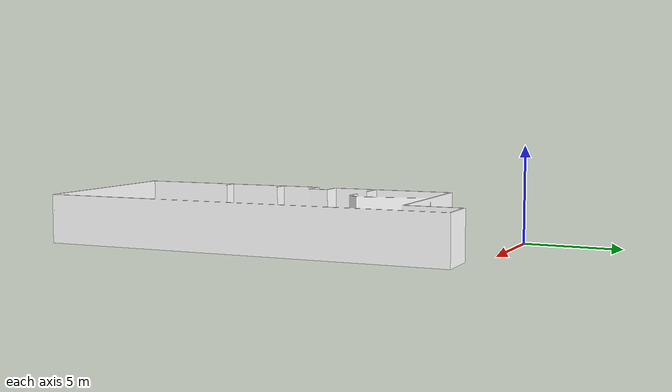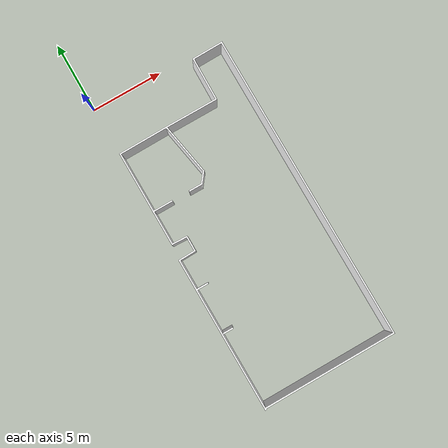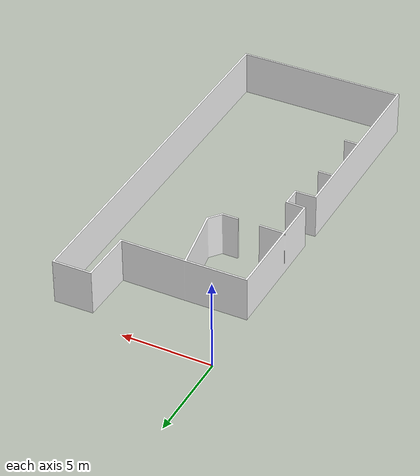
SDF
<?xml version='1.0' encoding='utf-8'?>
<sdf version="1.7">
  <model name="cafe_L1">
    <static>true</static>
    <link name="wall_1">
      <visual name="wall_1">
        <geometry>
          <mesh>
            <uri>model://cafe_L1/meshes/wall_1.obj</uri>
          </mesh>
        </geometry>
        <transparency>0.0</transparency>
        <material>
          <diffuse>1.0 1.0 1.0 1</diffuse>
          <specular>0.1 0.1 0.1</specular>
          <pbr>
            <metal>
              <metalness>0.0</metalness>
              <albedo_map>model://cafe_L1/meshes/default.png</albedo_map>
            </metal>
          </pbr>
          <script>
            <uri>model://cafe_L1/meshes/</uri>
            <name>wall_1_Diffuse</name>
          </script>
        </material>
      </visual>
      <collision name="collision">
        <geometry>
          <mesh>
            <uri>model://cafe_L1/meshes/wall_1.obj</uri>
          </mesh>
        </geometry>
        <surface>
          <contact>
            <collide_bitmask>0x01</collide_bitmask>
          </contact>
        </surface>
      </collision>
      <pose>0.021616306162699606 -22.27263901134223 0 0 0 0</pose>
    </link>
  </model>
</sdf>
